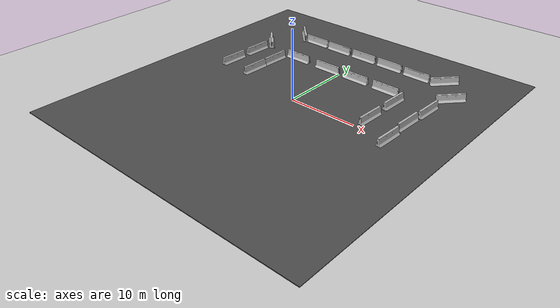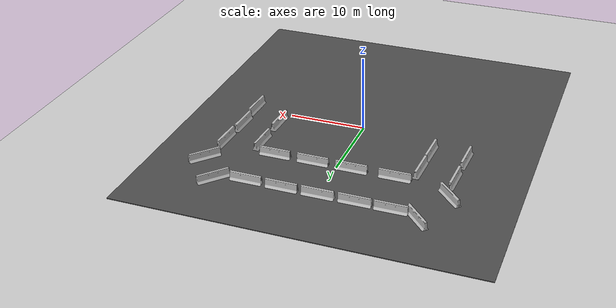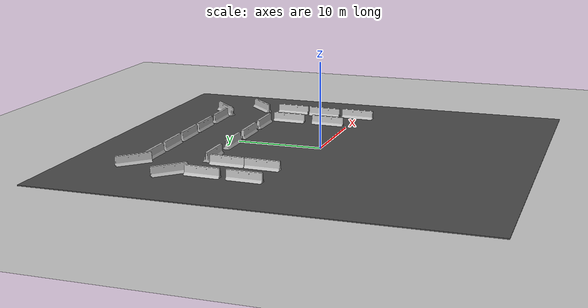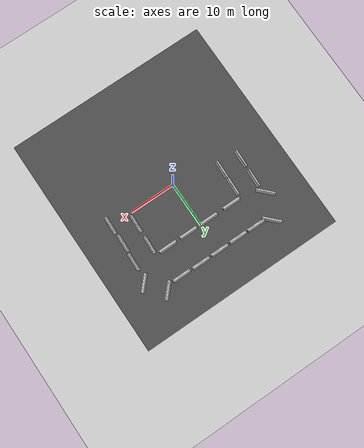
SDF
<sdf version="1.6">
 <world name="default">
  <model name="ground_plane">
   <static>1</static>
   <link name="link">
    <collision name="collision">
     <geometry><plane><normal>0 0 1</normal><size>100 100</size></plane></geometry>
     <surface><friction><ode><mu>100</mu><mu2>50</mu2></ode></friction></surface>
    </collision>
    <visual name="visual">
     <cast_shadows>0</cast_shadows>
     <geometry><plane><normal>0 0 1</normal><size>100 100</size></plane></geometry>
     <material>
      <script><uri>file://media/materials/scripts/gazebo.material</uri><name>Gazebo/Grey</name></script>
     </material>
    </visual>
    <velocity_decay><linear>0</linear><angular>0</angular></velocity_decay>
   </link>
  </model>
  <model name="jersey_barrier_3">
   <static>1</static>
   <link name="link">
    <visual name="visual">
     <geometry><mesh><uri>model://jersey_barrier/meshes/jersey_barrier.dae</uri></mesh></geometry>
    </visual>
    <collision name="upright">
     <pose>0 0 0.5715 0 -0 0</pose>
     <geometry><box><size>4.06542 0.3063 1.143</size></box></geometry>
    </collision>
    <collision name="base">
     <pose>0 0 0.032258 0 -0 0</pose>
     <geometry><box><size>4.06542 0.8107 0.064516</size></box></geometry>
    </collision>
    <collision name="base2">
     <pose>0 0 0.1 0 -0 0</pose>
     <geometry><box><size>4.06542 0.65 0.1</size></box></geometry>
    </collision>
    <collision name="base3">
     <pose>0 0 0.2 0 -0 0</pose>
     <geometry><box><size>4.06542 0.5 0.1</size></box></geometry>
    </collision>
    <collision name="left-angle">
     <pose>0 -0.224 0.2401 0.9 -0 0</pose>
     <geometry><box><size>4.06542 0.5 0.064516</size></box></geometry>
    </collision>
    <collision name="right-angle">
     <pose>0 0.224 0.2401 -0.9 0 0</pose>
     <geometry><box><size>4.06542 0.5 0.064516</size></box></geometry>
    </collision>
    <velocity_decay><linear>0</linear><angular>0</angular></velocity_decay>
   </link>
   <pose>-7.50675 10 0 0 -0 0</pose>
  </model>
  <model name="jersey_barrier_4">
   <static>1</static>
   <link name="link">
    <visual name="visual">
     <geometry><mesh><uri>model://jersey_barrier/meshes/jersey_barrier.dae</uri></mesh></geometry>
    </visual>
    <collision name="upright">
     <pose>0 0 0.5715 0 -0 0</pose>
     <geometry><box><size>4.06542 0.3063 1.143</size></box></geometry>
    </collision>
    <collision name="base">
     <pose>0 0 0.032258 0 -0 0</pose>
     <geometry><box><size>4.06542 0.8107 0.064516</size></box></geometry>
    </collision>
    <collision name="base2">
     <pose>0 0 0.1 0 -0 0</pose>
     <geometry><box><size>4.06542 0.65 0.1</size></box></geometry>
    </collision>
    <collision name="base3">
     <pose>0 0 0.2 0 -0 0</pose>
     <geometry><box><size>4.06542 0.5 0.1</size></box></geometry>
    </collision>
    <collision name="left-angle">
     <pose>0 -0.224 0.2401 0.9 -0 0</pose>
     <geometry><box><size>4.06542 0.5 0.064516</size></box></geometry>
    </collision>
    <collision name="right-angle">
     <pose>0 0.224 0.2401 -0.9 0 0</pose>
     <geometry><box><size>4.06542 0.5 0.064516</size></box></geometry>
    </collision>
    <velocity_decay><linear>0</linear><angular>0</angular></velocity_decay>
   </link>
   <pose>-2 10 0 0 -0 0</pose>
  </model>
  <model name="jersey_barrier_5">
   <static>1</static>
   <link name="link">
    <visual name="visual">
     <geometry><mesh><uri>model://jersey_barrier/meshes/jersey_barrier.dae</uri></mesh></geometry>
    </visual>
    <collision name="upright">
     <pose>0 0 0.5715 0 -0 0</pose>
     <geometry><box><size>4.06542 0.3063 1.143</size></box></geometry>
    </collision>
    <collision name="base">
     <pose>0 0 0.032258 0 -0 0</pose>
     <geometry><box><size>4.06542 0.8107 0.064516</size></box></geometry>
    </collision>
    <collision name="base2">
     <pose>0 0 0.1 0 -0 0</pose>
     <geometry><box><size>4.06542 0.65 0.1</size></box></geometry>
    </collision>
    <collision name="base3">
     <pose>0 0 0.2 0 -0 0</pose>
     <geometry><box><size>4.06542 0.5 0.1</size></box></geometry>
    </collision>
    <collision name="left-angle">
     <pose>0 -0.224 0.2401 0.9 -0 0</pose>
     <geometry><box><size>4.06542 0.5 0.064516</size></box></geometry>
    </collision>
    <collision name="right-angle">
     <pose>0 0.224 0.2401 -0.9 0 0</pose>
     <geometry><box><size>4.06542 0.5 0.064516</size></box></geometry>
    </collision>
    <velocity_decay><linear>0</linear><angular>0</angular></velocity_decay>
   </link>
   <pose>3 10 0 0 -0 0</pose>
  </model>
  <model name="jersey_barrier_6">
   <static>1</static>
   <link name="link">
    <visual name="visual">
     <geometry><mesh><uri>model://jersey_barrier/meshes/jersey_barrier.dae</uri></mesh></geometry>
    </visual>
    <collision name="upright">
     <pose>0 0 0.5715 0 -0 0</pose>
     <geometry><box><size>4.06542 0.3063 1.143</size></box></geometry>
    </collision>
    <collision name="base">
     <pose>0 0 0.032258 0 -0 0</pose>
     <geometry><box><size>4.06542 0.8107 0.064516</size></box></geometry>
    </collision>
    <collision name="base2">
     <pose>0 0 0.1 0 -0 0</pose>
     <geometry><box><size>4.06542 0.65 0.1</size></box></geometry>
    </collision>
    <collision name="base3">
     <pose>0 0 0.2 0 -0 0</pose>
     <geometry><box><size>4.06542 0.5 0.1</size></box></geometry>
    </collision>
    <collision name="left-angle">
     <pose>0 -0.224 0.2401 0.9 -0 0</pose>
     <geometry><box><size>4.06542 0.5 0.064516</size></box></geometry>
    </collision>
    <collision name="right-angle">
     <pose>0 0.224 0.2401 -0.9 0 0</pose>
     <geometry><box><size>4.06542 0.5 0.064516</size></box></geometry>
    </collision>
    <velocity_decay><linear>0</linear><angular>0</angular></velocity_decay>
   </link>
   <pose>8 10 0 0 -0 0</pose>
  </model>
  <model name="asphalt_plane">
   <static>1</static>
   <link name="link">
    <collision name="collision"><geometry><box><size>45.6368 49.6066 0.1</size></box></geometry></collision>
    <visual name="visual">
     <cast_shadows>0</cast_shadows>
     <geometry><box><size>45.6368 49.6066 0.1</size></box></geometry>
     <material>
      <script>
       <uri>model://asphalt_plane/materials/scripts</uri>
       <uri>model://asphalt_plane/materials/textures</uri>
       <name>vrc/asphalt</name>
      </script>
     </material>
    </visual>
    <velocity_decay><linear>0</linear><angular>0</angular></velocity_decay>
   </link>
   <pose>-0.123803 0.022176 0 0 -0 0</pose>
  </model>
  <model name="jersey_barrier_7_clone_0">
   <static>1</static>
   <link name="link">
    <visual name="visual">
     <geometry><mesh><uri>model://jersey_barrier/meshes/jersey_barrier.dae</uri></mesh></geometry>
    </visual>
    <collision name="upright">
     <pose>0 0 0.5715 0 -0 0</pose>
     <geometry><box><size>4.06542 0.3063 1.143</size></box></geometry>
    </collision>
    <collision name="base">
     <pose>0 0 0.032258 0 -0 0</pose>
     <geometry><box><size>4.06542 0.8107 0.064516</size></box></geometry>
    </collision>
    <collision name="base2">
     <pose>0 0 0.1 0 -0 0</pose>
     <geometry><box><size>4.06542 0.65 0.1</size></box></geometry>
    </collision>
    <collision name="base3">
     <pose>0 0 0.2 0 -0 0</pose>
     <geometry><box><size>4.06542 0.5 0.1</size></box></geometry>
    </collision>
    <collision name="left-angle">
     <pose>0 -0.224 0.2401 0.9 -0 0</pose>
     <geometry><box><size>4.06542 0.5 0.064516</size></box></geometry>
    </collision>
    <collision name="right-angle">
     <pose>0 0.224 0.2401 -0.9 0 0</pose>
     <geometry><box><size>4.06542 0.5 0.064516</size></box></geometry>
    </collision>
   </link>
   <pose>10.7124 2.55807 0 0 -0 1.5316</pose>
  </model>
  <model name="jersey_barrier_7_clone_1">
   <static>1</static>
   <link name="link">
    <visual name="visual">
     <geometry><mesh><uri>model://jersey_barrier/meshes/jersey_barrier.dae</uri></mesh></geometry>
    </visual>
    <collision name="upright">
     <pose>0 0 0.5715 0 -0 0</pose>
     <geometry><box><size>4.06542 0.3063 1.143</size></box></geometry>
    </collision>
    <collision name="base">
     <pose>0 0 0.032258 0 -0 0</pose>
     <geometry><box><size>4.06542 0.8107 0.064516</size></box></geometry>
    </collision>
    <collision name="base2">
     <pose>0 0 0.1 0 -0 0</pose>
     <geometry><box><size>4.06542 0.65 0.1</size></box></geometry>
    </collision>
    <collision name="base3">
     <pose>0 0 0.2 0 -0 0</pose>
     <geometry><box><size>4.06542 0.5 0.1</size></box></geometry>
    </collision>
    <collision name="left-angle">
     <pose>0 -0.224 0.2401 0.9 -0 0</pose>
     <geometry><box><size>4.06542 0.5 0.064516</size></box></geometry>
    </collision>
    <collision name="right-angle">
     <pose>0 0.224 0.2401 -0.9 0 0</pose>
     <geometry><box><size>4.06542 0.5 0.064516</size></box></geometry>
    </collision>
   </link>
   <pose>10.8167 7.65912 0 0 -0 1.5316</pose>
  </model>
  <model name="jersey_barrier_7_clone_1_clone">
   <static>1</static>
   <link name="link">
    <visual name="visual">
     <geometry><mesh><uri>model://jersey_barrier/meshes/jersey_barrier.dae</uri></mesh></geometry>
    </visual>
    <collision name="upright">
     <pose>0 0 0.5715 0 -0 0</pose>
     <geometry><box><size>4.06542 0.3063 1.143</size></box></geometry>
    </collision>
    <collision name="base">
     <pose>0 0 0.032258 0 -0 0</pose>
     <geometry><box><size>4.06542 0.8107 0.064516</size></box></geometry>
    </collision>
    <collision name="base2">
     <pose>0 0 0.1 0 -0 0</pose>
     <geometry><box><size>4.06542 0.65 0.1</size></box></geometry>
    </collision>
    <collision name="base3">
     <pose>0 0 0.2 0 -0 0</pose>
     <geometry><box><size>4.06542 0.5 0.1</size></box></geometry>
    </collision>
    <collision name="left-angle">
     <pose>0 -0.224 0.2401 0.9 -0 0</pose>
     <geometry><box><size>4.06542 0.5 0.064516</size></box></geometry>
    </collision>
    <collision name="right-angle">
     <pose>0 0.224 0.2401 -0.9 0 0</pose>
     <geometry><box><size>4.06542 0.5 0.064516</size></box></geometry>
    </collision>
   </link>
   <pose>-9.88681 7.31742 0 0 -0 1.5316</pose>
  </model>
  <model name="jersey_barrier_7_clone_1_clone_1">
   <static>1</static>
   <link name="link">
    <visual name="visual">
     <geometry><mesh><uri>model://jersey_barrier/meshes/jersey_barrier.dae</uri></mesh></geometry>
    </visual>
    <collision name="upright">
     <pose>0 0 0.5715 0 -0 0</pose>
     <geometry><box><size>4.06542 0.3063 1.143</size></box></geometry>
    </collision>
    <collision name="base">
     <pose>0 0 0.032258 0 -0 0</pose>
     <geometry><box><size>4.06542 0.8107 0.064516</size></box></geometry>
    </collision>
    <collision name="base2">
     <pose>0 0 0.1 0 -0 0</pose>
     <geometry><box><size>4.06542 0.65 0.1</size></box></geometry>
    </collision>
    <collision name="base3">
     <pose>0 0 0.2 0 -0 0</pose>
     <geometry><box><size>4.06542 0.5 0.1</size></box></geometry>
    </collision>
    <collision name="left-angle">
     <pose>0 -0.224 0.2401 0.9 -0 0</pose>
     <geometry><box><size>4.06542 0.5 0.064516</size></box></geometry>
    </collision>
    <collision name="right-angle">
     <pose>0 0.224 0.2401 -0.9 0 0</pose>
     <geometry><box><size>4.06542 0.5 0.064516</size></box></geometry>
    </collision>
   </link>
   <pose>-14.3801 8.23059 0 0 -0 1.5316</pose>
  </model>
  <model name="jersey_barrier_7_clone_1_clone_2">
   <static>1</static>
   <link name="link">
    <visual name="visual">
     <geometry><mesh><uri>model://jersey_barrier/meshes/jersey_barrier.dae</uri></mesh></geometry>
    </visual>
    <collision name="upright">
     <pose>0 0 0.5715 0 -0 0</pose>
     <geometry><box><size>4.06542 0.3063 1.143</size></box></geometry>
    </collision>
    <collision name="base">
     <pose>0 0 0.032258 0 -0 0</pose>
     <geometry><box><size>4.06542 0.8107 0.064516</size></box></geometry>
    </collision>
    <collision name="base2">
     <pose>0 0 0.1 0 -0 0</pose>
     <geometry><box><size>4.06542 0.65 0.1</size></box></geometry>
    </collision>
    <collision name="base3">
     <pose>0 0 0.2 0 -0 0</pose>
     <geometry><box><size>4.06542 0.5 0.1</size></box></geometry>
    </collision>
    <collision name="left-angle">
     <pose>0 -0.224 0.2401 0.9 -0 0</pose>
     <geometry><box><size>4.06542 0.5 0.064516</size></box></geometry>
    </collision>
    <collision name="right-angle">
     <pose>0 0.224 0.2401 -0.9 0 0</pose>
     <geometry><box><size>4.06542 0.5 0.064516</size></box></geometry>
    </collision>
   </link>
   <pose>-14.5541 3.41634 0 0 -0 1.5316</pose>
  </model>
  <model name="jersey_barrier_6_clone">
   <static>1</static>
   <link name="link">
    <visual name="visual">
     <geometry><mesh><uri>model://jersey_barrier/meshes/jersey_barrier.dae</uri></mesh></geometry>
    </visual>
    <collision name="upright">
     <pose>0 0 0.5715 0 -0 0</pose>
     <geometry><box><size>4.06542 0.3063 1.143</size></box></geometry>
    </collision>
    <collision name="base">
     <pose>0 0 0.032258 0 -0 0</pose>
     <geometry><box><size>4.06542 0.8107 0.064516</size></box></geometry>
    </collision>
    <collision name="base2">
     <pose>0 0 0.1 0 -0 0</pose>
     <geometry><box><size>4.06542 0.65 0.1</size></box></geometry>
    </collision>
    <collision name="base3">
     <pose>0 0 0.2 0 -0 0</pose>
     <geometry><box><size>4.06542 0.5 0.1</size></box></geometry>
    </collision>
    <collision name="left-angle">
     <pose>0 -0.224 0.2401 0.9 -0 0</pose>
     <geometry><box><size>4.06542 0.5 0.064516</size></box></geometry>
    </collision>
    <collision name="right-angle">
     <pose>0 0.224 0.2401 -0.9 0 0</pose>
     <geometry><box><size>4.06542 0.5 0.064516</size></box></geometry>
    </collision>
    <velocity_decay><linear>0</linear><angular>0</angular></velocity_decay>
   </link>
   <pose>8.97438 16.3625 0 0 -0 0</pose>
  </model>
  <model name="jersey_barrier_6_clone_0">
   <static>1</static>
   <link name="link">
    <visual name="visual">
     <geometry><mesh><uri>model://jersey_barrier/meshes/jersey_barrier.dae</uri></mesh></geometry>
    </visual>
    <collision name="upright">
     <pose>0 0 0.5715 0 -0 0</pose>
     <geometry><box><size>4.06542 0.3063 1.143</size></box></geometry>
    </collision>
    <collision name="base">
     <pose>0 0 0.032258 0 -0 0</pose>
     <geometry><box><size>4.06542 0.8107 0.064516</size></box></geometry>
    </collision>
    <collision name="base2">
     <pose>0 0 0.1 0 -0 0</pose>
     <geometry><box><size>4.06542 0.65 0.1</size></box></geometry>
    </collision>
    <collision name="base3">
     <pose>0 0 0.2 0 -0 0</pose>
     <geometry><box><size>4.06542 0.5 0.1</size></box></geometry>
    </collision>
    <collision name="left-angle">
     <pose>0 -0.224 0.2401 0.9 -0 0</pose>
     <geometry><box><size>4.06542 0.5 0.064516</size></box></geometry>
    </collision>
    <collision name="right-angle">
     <pose>0 0.224 0.2401 -0.9 0 0</pose>
     <geometry><box><size>4.06542 0.5 0.064516</size></box></geometry>
    </collision>
    <velocity_decay><linear>0</linear><angular>0</angular></velocity_decay>
   </link>
   <pose>4.36549 16.4491 0 0 -0 0</pose>
  </model>
  <model name="jersey_barrier_6_clone_1">
   <static>1</static>
   <link name="link">
    <visual name="visual">
     <geometry><mesh><uri>model://jersey_barrier/meshes/jersey_barrier.dae</uri></mesh></geometry>
    </visual>
    <collision name="upright">
     <pose>0 0 0.5715 0 -0 0</pose>
     <geometry><box><size>4.06542 0.3063 1.143</size></box></geometry>
    </collision>
    <collision name="base">
     <pose>0 0 0.032258 0 -0 0</pose>
     <geometry><box><size>4.06542 0.8107 0.064516</size></box></geometry>
    </collision>
    <collision name="base2">
     <pose>0 0 0.1 0 -0 0</pose>
     <geometry><box><size>4.06542 0.65 0.1</size></box></geometry>
    </collision>
    <collision name="base3">
     <pose>0 0 0.2 0 -0 0</pose>
     <geometry><box><size>4.06542 0.5 0.1</size></box></geometry>
    </collision>
    <collision name="left-angle">
     <pose>0 -0.224 0.2401 0.9 -0 0</pose>
     <geometry><box><size>4.06542 0.5 0.064516</size></box></geometry>
    </collision>
    <collision name="right-angle">
     <pose>0 0.224 0.2401 -0.9 0 0</pose>
     <geometry><box><size>4.06542 0.5 0.064516</size></box></geometry>
    </collision>
    <velocity_decay><linear>0</linear><angular>0</angular></velocity_decay>
   </link>
   <pose>-0.186767 16.446 0 0 -0 0</pose>
  </model>
  <model name="jersey_barrier_6_clone_2">
   <static>1</static>
   <link name="link">
    <visual name="visual">
     <geometry><mesh><uri>model://jersey_barrier/meshes/jersey_barrier.dae</uri></mesh></geometry>
    </visual>
    <collision name="upright">
     <pose>0 0 0.5715 0 -0 0</pose>
     <geometry><box><size>4.06542 0.3063 1.143</size></box></geometry>
    </collision>
    <collision name="base">
     <pose>0 0 0.032258 0 -0 0</pose>
     <geometry><box><size>4.06542 0.8107 0.064516</size></box></geometry>
    </collision>
    <collision name="base2">
     <pose>0 0 0.1 0 -0 0</pose>
     <geometry><box><size>4.06542 0.65 0.1</size></box></geometry>
    </collision>
    <collision name="base3">
     <pose>0 0 0.2 0 -0 0</pose>
     <geometry><box><size>4.06542 0.5 0.1</size></box></geometry>
    </collision>
    <collision name="left-angle">
     <pose>0 -0.224 0.2401 0.9 -0 0</pose>
     <geometry><box><size>4.06542 0.5 0.064516</size></box></geometry>
    </collision>
    <collision name="right-angle">
     <pose>0 0.224 0.2401 -0.9 0 0</pose>
     <geometry><box><size>4.06542 0.5 0.064516</size></box></geometry>
    </collision>
    <velocity_decay><linear>0</linear><angular>0</angular></velocity_decay>
   </link>
   <pose>-4.72887 16.4044 0 0 -0 0</pose>
  </model>
  <model name="jersey_barrier_6_clone_3">
   <static>1</static>
   <link name="link">
    <visual name="visual">
     <geometry><mesh><uri>model://jersey_barrier/meshes/jersey_barrier.dae</uri></mesh></geometry>
    </visual>
    <collision name="upright">
     <pose>0 0 0.5715 0 -0 0</pose>
     <geometry><box><size>4.06542 0.3063 1.143</size></box></geometry>
    </collision>
    <collision name="base">
     <pose>0 0 0.032258 0 -0 0</pose>
     <geometry><box><size>4.06542 0.8107 0.064516</size></box></geometry>
    </collision>
    <collision name="base2">
     <pose>0 0 0.1 0 -0 0</pose>
     <geometry><box><size>4.06542 0.65 0.1</size></box></geometry>
    </collision>
    <collision name="base3">
     <pose>0 0 0.2 0 -0 0</pose>
     <geometry><box><size>4.06542 0.5 0.1</size></box></geometry>
    </collision>
    <collision name="left-angle">
     <pose>0 -0.224 0.2401 0.9 -0 0</pose>
     <geometry><box><size>4.06542 0.5 0.064516</size></box></geometry>
    </collision>
    <collision name="right-angle">
     <pose>0 0.224 0.2401 -0.9 0 0</pose>
     <geometry><box><size>4.06542 0.5 0.064516</size></box></geometry>
    </collision>
    <velocity_decay><linear>0</linear><angular>0</angular></velocity_decay>
   </link>
   <pose>-9.0937 16.4454 0 0 -0 0</pose>
  </model>
  <model name="jersey_barrier_7_clone_4">
   <static>1</static>
   <link name="link">
    <visual name="visual">
     <geometry><mesh><uri>model://jersey_barrier/meshes/jersey_barrier.dae</uri></mesh></geometry>
    </visual>
    <collision name="upright">
     <pose>0 0 0.5715 0 -0 0</pose>
     <geometry><box><size>4.06542 0.3063 1.143</size></box></geometry>
    </collision>
    <collision name="base">
     <pose>0 0 0.032258 0 -0 0</pose>
     <geometry><box><size>4.06542 0.8107 0.064516</size></box></geometry>
    </collision>
    <collision name="base2">
     <pose>0 0 0.1 0 -0 0</pose>
     <geometry><box><size>4.06542 0.65 0.1</size></box></geometry>
    </collision>
    <collision name="base3">
     <pose>0 0 0.2 0 -0 0</pose>
     <geometry><box><size>4.06542 0.5 0.1</size></box></geometry>
    </collision>
    <collision name="left-angle">
     <pose>0 -0.224 0.2401 0.9 -0 0</pose>
     <geometry><box><size>4.06542 0.5 0.064516</size></box></geometry>
    </collision>
    <collision name="right-angle">
     <pose>0 0.224 0.2401 -0.9 0 0</pose>
     <geometry><box><size>4.06542 0.5 0.064516</size></box></geometry>
    </collision>
   </link>
   <pose>15.1542 -0.062521 0 0 -0 1.5316</pose>
  </model>
  <model name="jersey_barrier_7_clone_5">
   <static>1</static>
   <link name="link">
    <visual name="visual">
     <geometry><mesh><uri>model://jersey_barrier/meshes/jersey_barrier.dae</uri></mesh></geometry>
    </visual>
    <collision name="upright">
     <pose>0 0 0.5715 0 -0 0</pose>
     <geometry><box><size>4.06542 0.3063 1.143</size></box></geometry>
    </collision>
    <collision name="base">
     <pose>0 0 0.032258 0 -0 0</pose>
     <geometry><box><size>4.06542 0.8107 0.064516</size></box></geometry>
    </collision>
    <collision name="base2">
     <pose>0 0 0.1 0 -0 0</pose>
     <geometry><box><size>4.06542 0.65 0.1</size></box></geometry>
    </collision>
    <collision name="base3">
     <pose>0 0 0.2 0 -0 0</pose>
     <geometry><box><size>4.06542 0.5 0.1</size></box></geometry>
    </collision>
    <collision name="left-angle">
     <pose>0 -0.224 0.2401 0.9 -0 0</pose>
     <geometry><box><size>4.06542 0.5 0.064516</size></box></geometry>
    </collision>
    <collision name="right-angle">
     <pose>0 0.224 0.2401 -0.9 0 0</pose>
     <geometry><box><size>4.06542 0.5 0.064516</size></box></geometry>
    </collision>
   </link>
   <pose>15.0397 4.35414 0 0 -0 1.5316</pose>
  </model>
  <model name="jersey_barrier_7_clone_6">
   <static>1</static>
   <link name="link">
    <visual name="visual">
     <geometry><mesh><uri>model://jersey_barrier/meshes/jersey_barrier.dae</uri></mesh></geometry>
    </visual>
    <collision name="upright">
     <pose>0 0 0.5715 0 -0 0</pose>
     <geometry><box><size>4.06542 0.3063 1.143</size></box></geometry>
    </collision>
    <collision name="base">
     <pose>0 0 0.032258 0 -0 0</pose>
     <geometry><box><size>4.06542 0.8107 0.064516</size></box></geometry>
    </collision>
    <collision name="base2">
     <pose>0 0 0.1 0 -0 0</pose>
     <geometry><box><size>4.06542 0.65 0.1</size></box></geometry>
    </collision>
    <collision name="base3">
     <pose>0 0 0.2 0 -0 0</pose>
     <geometry><box><size>4.06542 0.5 0.1</size></box></geometry>
    </collision>
    <collision name="left-angle">
     <pose>0 -0.224 0.2401 0.9 -0 0</pose>
     <geometry><box><size>4.06542 0.5 0.064516</size></box></geometry>
    </collision>
    <collision name="right-angle">
     <pose>0 0.224 0.2401 -0.9 0 0</pose>
     <geometry><box><size>4.06542 0.5 0.064516</size></box></geometry>
    </collision>
   </link>
   <pose>15.3673 8.67832 0 0 -0 1.5316</pose>
  </model>
  <model name="jersey_barrier_clone_4_clone_0">
   <static>1</static>
   <link name="link">
    <visual name="visual">
     <geometry><mesh><uri>model://jersey_barrier/meshes/jersey_barrier.dae</uri></mesh></geometry>
    </visual>
    <collision name="upright">
     <pose>0 0 0.5715 0 -0 0</pose>
     <geometry><box><size>4.06542 0.3063 1.143</size></box></geometry>
    </collision>
    <collision name="base">
     <pose>0 0 0.032258 0 -0 0</pose>
     <geometry><box><size>4.06542 0.8107 0.064516</size></box></geometry>
    </collision>
    <collision name="base2">
     <pose>0 0 0.1 0 -0 0</pose>
     <geometry><box><size>4.06542 0.65 0.1</size></box></geometry>
    </collision>
    <collision name="base3">
     <pose>0 0 0.2 0 -0 0</pose>
     <geometry><box><size>4.06542 0.5 0.1</size></box></geometry>
    </collision>
    <collision name="left-angle">
     <pose>0 -0.224 0.2401 0.9 -0 0</pose>
     <geometry><box><size>4.06542 0.5 0.064516</size></box></geometry>
    </collision>
    <collision name="right-angle">
     <pose>0 0.224 0.2401 -0.9 0 0</pose>
     <geometry><box><size>4.06542 0.5 0.064516</size></box></geometry>
    </collision>
    <velocity_decay><linear>0</linear><angular>0</angular></velocity_decay>
   </link>
   <pose>-14.7266 11.8532 0 0 0 -0.792377</pose>
  </model>
  <model name="jersey_barrier_clone_4_clone_1">
   <static>1</static>
   <link name="link">
    <visual name="visual">
     <geometry><mesh><uri>model://jersey_barrier/meshes/jersey_barrier.dae</uri></mesh></geometry>
    </visual>
    <collision name="upright">
     <pose>0 0 0.5715 0 -0 0</pose>
     <geometry><box><size>4.06542 0.3063 1.143</size></box></geometry>
    </collision>
    <collision name="base">
     <pose>0 0 0.032258 0 -0 0</pose>
     <geometry><box><size>4.06542 0.8107 0.064516</size></box></geometry>
    </collision>
    <collision name="base2">
     <pose>0 0 0.1 0 -0 0</pose>
     <geometry><box><size>4.06542 0.65 0.1</size></box></geometry>
    </collision>
    <collision name="base3">
     <pose>0 0 0.2 0 -0 0</pose>
     <geometry><box><size>4.06542 0.5 0.1</size></box></geometry>
    </collision>
    <collision name="left-angle">
     <pose>0 -0.224 0.2401 0.9 -0 0</pose>
     <geometry><box><size>4.06542 0.5 0.064516</size></box></geometry>
    </collision>
    <collision name="right-angle">
     <pose>0 0.224 0.2401 -0.9 0 0</pose>
     <geometry><box><size>4.06542 0.5 0.064516</size></box></geometry>
    </collision>
    <velocity_decay><linear>0</linear><angular>0</angular></velocity_decay>
   </link>
   <pose>-12.4105 17.2728 0 0 0 -0.792377</pose>
  </model>
  <model name="jersey_barrier_clone_4_clone_2_clone_0">
   <static>1</static>
   <link name="link">
    <visual name="visual">
     <geometry><mesh><uri>model://jersey_barrier/meshes/jersey_barrier.dae</uri></mesh></geometry>
    </visual>
    <collision name="upright">
     <pose>0 0 0.5715 0 -0 0</pose>
     <geometry><box><size>4.06542 0.3063 1.143</size></box></geometry>
    </collision>
    <collision name="base">
     <pose>0 0 0.032258 0 -0 0</pose>
     <geometry><box><size>4.06542 0.8107 0.064516</size></box></geometry>
    </collision>
    <collision name="base2">
     <pose>0 0 0.1 0 -0 0</pose>
     <geometry><box><size>4.06542 0.65 0.1</size></box></geometry>
    </collision>
    <collision name="base3">
     <pose>0 0 0.2 0 -0 0</pose>
     <geometry><box><size>4.06542 0.5 0.1</size></box></geometry>
    </collision>
    <collision name="left-angle">
     <pose>0 -0.224 0.2401 0.9 -0 0</pose>
     <geometry><box><size>4.06542 0.5 0.064516</size></box></geometry>
    </collision>
    <collision name="right-angle">
     <pose>0 0.224 0.2401 -0.9 0 0</pose>
     <geometry><box><size>4.06542 0.5 0.064516</size></box></geometry>
    </collision>
    <velocity_decay><linear>0</linear><angular>0</angular></velocity_decay>
   </link>
   <pose>12.8572 17.2331 0 0 -0 0.826051</pose>
  </model>
  <model name="jersey_barrier_clone_4_clone_2_clone_1">
   <static>1</static>
   <link name="link">
    <visual name="visual">
     <geometry><mesh><uri>model://jersey_barrier/meshes/jersey_barrier.dae</uri></mesh></geometry>
    </visual>
    <collision name="upright">
     <pose>0 0 0.5715 0 -0 0</pose>
     <geometry><box><size>4.06542 0.3063 1.143</size></box></geometry>
    </collision>
    <collision name="base">
     <pose>0 0 0.032258 0 -0 0</pose>
     <geometry><box><size>4.06542 0.8107 0.064516</size></box></geometry>
    </collision>
    <collision name="base2">
     <pose>0 0 0.1 0 -0 0</pose>
     <geometry><box><size>4.06542 0.65 0.1</size></box></geometry>
    </collision>
    <collision name="base3">
     <pose>0 0 0.2 0 -0 0</pose>
     <geometry><box><size>4.06542 0.5 0.1</size></box></geometry>
    </collision>
    <collision name="left-angle">
     <pose>0 -0.224 0.2401 0.9 -0 0</pose>
     <geometry><box><size>4.06542 0.5 0.064516</size></box></geometry>
    </collision>
    <collision name="right-angle">
     <pose>0 0.224 0.2401 -0.9 0 0</pose>
     <geometry><box><size>4.06542 0.5 0.064516</size></box></geometry>
    </collision>
    <velocity_decay><linear>0</linear><angular>0</angular></velocity_decay>
   </link>
   <pose>15.9769 13.3489 0 0 -0 0.826051</pose>
  </model>
  <model name="jersey_barrier_7_clone_1_clone_clone">
   <static>1</static>
   <link name="link">
    <visual name="visual">
     <geometry><mesh><uri>model://jersey_barrier/meshes/jersey_barrier.dae</uri></mesh></geometry>
    </visual>
    <collision name="upright">
     <pose>0 0 0.5715 0 -0 0</pose>
     <geometry><box><size>4.06542 0.3063 1.143</size></box></geometry>
    </collision>
    <collision name="base">
     <pose>0 0 0.032258 0 -0 0</pose>
     <geometry><box><size>4.06542 0.8107 0.064516</size></box></geometry>
    </collision>
    <collision name="base2">
     <pose>0 0 0.1 0 -0 0</pose>
     <geometry><box><size>4.06542 0.65 0.1</size></box></geometry>
    </collision>
    <collision name="base3">
     <pose>0 0 0.2 0 -0 0</pose>
     <geometry><box><size>4.06542 0.5 0.1</size></box></geometry>
    </collision>
    <collision name="left-angle">
     <pose>0 -0.224 0.2401 0.9 -0 0</pose>
     <geometry><box><size>4.06542 0.5 0.064516</size></box></geometry>
    </collision>
    <collision name="right-angle">
     <pose>0 0.224 0.2401 -0.9 0 0</pose>
     <geometry><box><size>4.06542 0.5 0.064516</size></box></geometry>
    </collision>
   </link>
   <pose>-10.0171 3.22202 0 0 -0 1.5316</pose>
  </model>
 </world>
</sdf>
